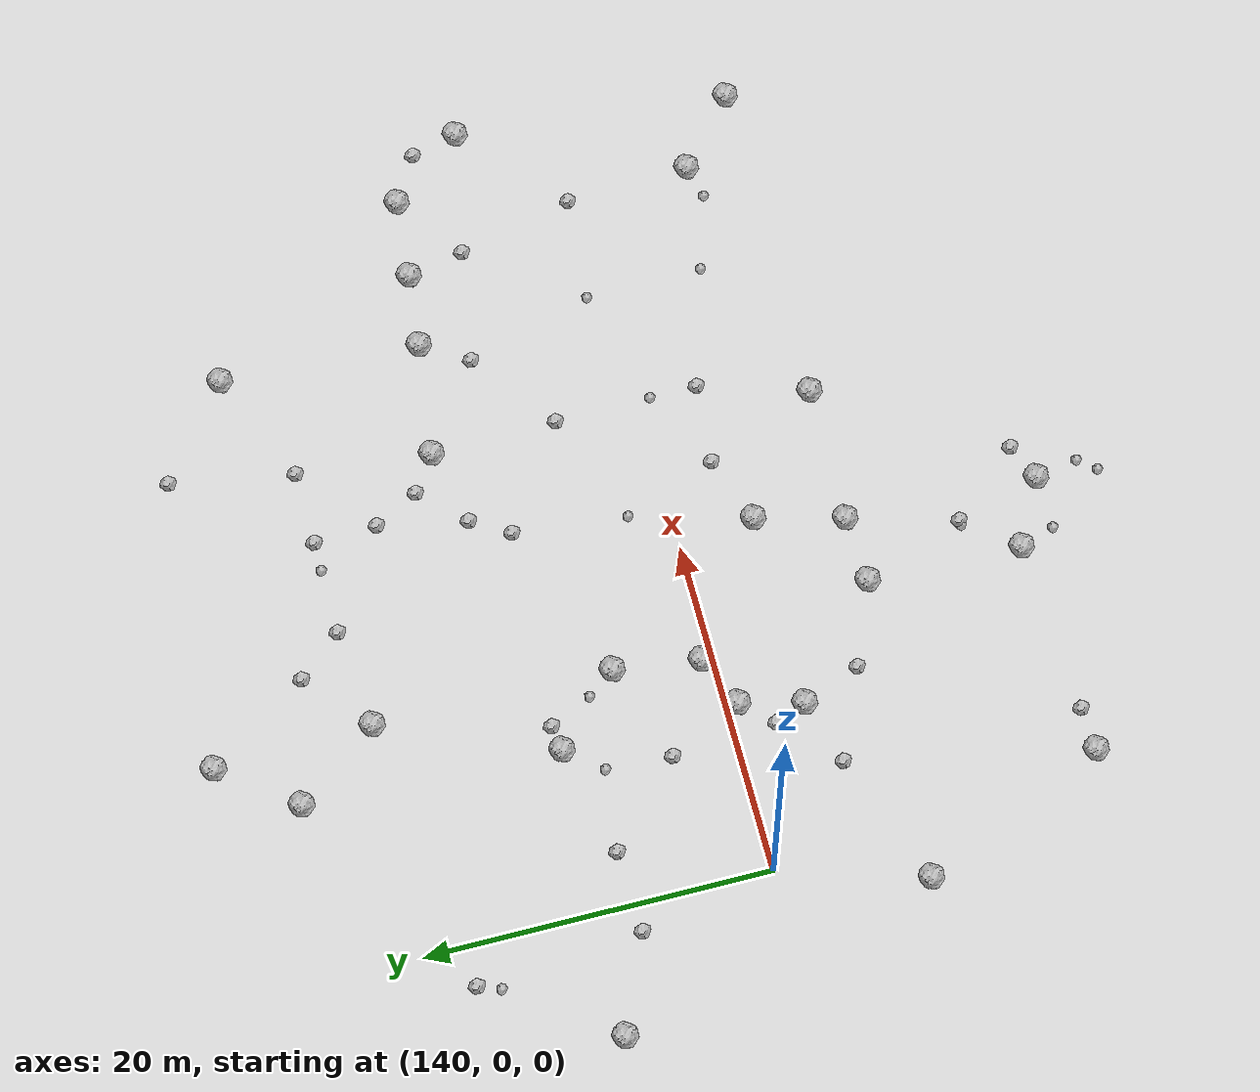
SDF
<sdf version="1.6">
 <world name="default">
  <include><uri>model://sun</uri></include>
  <model name="rock1_4_2">
   <include><uri>model://rock1</uri><pose>187.3562052997329 -10.031713053855075 0.5 0 0 0</pose></include>
  </model>
  <model name="rock1_4_3">
   <include><uri>model://rock1</uri><pose>167.53471687610028 -9.689033133781344 0.5 0 0 0</pose></include>
  </model>
  <model name="rock1_4_4">
   <include><uri>model://rock1</uri><pose>132.8632398717033 10.401752732410024 0.5 0 0 0</pose></include>
  </model>
  <model name="rock1_4_5">
   <include><uri>model://rock1</uri><pose>169.22915711056524 12.344344365527263 0.5 0 0 0</pose></include>
  </model>
  <model name="rock1_4_6">
   <include><uri>model://rock1</uri><pose>188.90943503776003 6.099504948376605 0.5 0 0 0</pose></include>
  </model>
  <model name="rock1_4_7">
   <include><uri>model://rock1</uri><pose>158.99555440398987 -20.764938915951014 0.5 0 0 0</pose></include>
  </model>
  <model name="rock1_4_8">
   <include><uri>model://rock1</uri><pose>153.7298757789309 5.68400421399825 0.5 0 0 0</pose></include>
  </model>
  <model name="rock1_4_9">
   <include><uri>model://rock1</uri><pose>150.3253667018962 24.404527935218205 0.5 0 0 0</pose></include>
  </model>
  <model name="rock1_4_10">
   <include><uri>model://rock1</uri><pose>153.04230189455168 0.6800077768900508 0.5 0 0 0</pose></include>
  </model>
  <model name="rock1_4_11">
   <include><uri>model://rock1</uri><pose>185.42045336101253 10.476278491743514 0.5 0 0 0</pose></include>
  </model>
  <model name="rock1_4_12">
   <include><uri>model://rock1</uri><pose>137.36385228714155 -8.243710205805709 0.5 0 0 0</pose></include>
  </model>
  <model name="rock1_4_13">
   <include><uri>model://rock1</uri><pose>160.65477648649943 -4.435346312410147 0.5 0 0 0</pose></include>
  </model>
  <model name="rock1_4_14">
   <include><uri>model://rock1</uri><pose>180.5970209082269 10.92113711817715 0.5 0 0 0</pose></include>
  </model>
  <model name="rock1_4_15">
   <include><uri>model://rock1</uri><pose>176.78112764811684 23.071093600243906 0.5 0 0 0</pose></include>
  </model>
  <model name="rock1_4_16">
   <include><uri>model://rock1</uri><pose>142.2530488659405 -19.237610400595294 0.5 0 0 0</pose></include>
  </model>
  <model name="rock1_4_17">
   <include><uri>model://rock1</uri><pose>153.63916900407992 28.668093941854735 0.5 0 0 0</pose></include>
  </model>
  <model name="rock1_4_18">
   <include><uri>model://rock1</uri><pose>153.95414889403764 19.509198637032583 0.5 0 0 0</pose></include>
  </model>
  <model name="rock1_4_19">
   <include><uri>model://rock1</uri><pose>183.326108568277 -6.567926118573798 0.5 0 0 0</pose></include>
  </model>
  <model name="rock1_4_20">
   <include><uri>model://rock1</uri><pose>149.7928274432018 9.610052019079255 0.5 0 0 0</pose></include>
  </model>
  <model name="rock1_4_21">
   <include><uri>model://rock1</uri><pose>159.31287381605057 -9.505326870847728 0.5 0 0 0</pose></include>
  </model>
  <model name="rock1_4_22">
   <include><uri>model://rock1</uri><pose>155.07545732602793 -18.723729131828296 0.5 0 0 0</pose></include>
  </model>
  <model name="rock1_4_23">
   <include><uri>model://rock1</uri><pose>149.0678951695129 -4.251080320805105 0.5 0 0 0</pose></include>
  </model>
  <model name="rock1_4_24">
   <include><uri>model://rock1</uri><pose>176.1079762337427 11.410362428326529 0.5 0 0 0</pose></include>
  </model>
  <model name="rock1_4_25">
   <include><uri>model://rock1</uri><pose>150.01000468629923 -0.6126558005912628 0.5 0 0 0</pose></include>
  </model>
  <model name="rock1_4_26">
   <include><uri>model://rock1</uri><pose>155.31650951550944 -9.702082306875113 0.5 0 0 0</pose></include>
  </model>
  <model name="rock2_4_0">
   <include><uri>model://rock2</uri><pose>181.2942506106994 7.566005558534883 0.3 0 0 0</pose></include>
  </model>
  <model name="rock2_4_1">
   <include><uri>model://rock2</uri><pose>151.3073870487399 9.811341411066913 0.3 0 0 0</pose></include>
  </model>
  <model name="rock2_4_2">
   <include><uri>model://rock2</uri><pose>157.6085922602802 22.717336202525317 0.3 0 0 0</pose></include>
  </model>
  <model name="rock2_4_3">
   <include><uri>model://rock2</uri><pose>165.54122964050265 20.12138933877359 0.3 0 0 0</pose></include>
  </model>
  <model name="rock2_4_4">
   <include><uri>model://rock2</uri><pose>145.16469727200894 -5.415692172487056 0.3 0 0 0</pose></include>
  </model>
  <model name="rock2_4_5">
   <include><uri>model://rock2</uri><pose>157.54985597063546 -15.777651598286441 0.3 0 0 0</pose></include>
  </model>
  <model name="rock2_4_6">
   <include><uri>model://rock2</uri><pose>163.27560676124023 9.08576398534894 0.3 0 0 0</pose></include>
  </model>
  <model name="rock2_4_7">
   <include><uri>model://rock2</uri><pose>137.65094506378722 17.524422282960366 0.3 0 0 0</pose></include>
  </model>
  <model name="rock2_4_8">
   <include><uri>model://rock2</uri><pose>167.08389152825941 13.818690913150839 0.3 0 0 0</pose></include>
  </model>
  <model name="rock2_4_9">
   <include><uri>model://rock2</uri><pose>164.62807709480717 11.293917533988079 0.3 0 0 0</pose></include>
  </model>
  <model name="rock2_4_10">
   <include><uri>model://rock2</uri><pose>147.86924105840274 3.710545255577294 0.3 0 0 0</pose></include>
  </model>
  <model name="rock2_4_11">
   <include><uri>model://rock2</uri><pose>164.67453179831324 -3.0608325800639022 0.3 0 0 0</pose></include>
  </model>
  <model name="rock2_4_12">
   <include><uri>model://rock2</uri><pose>143.20591922407834 8.137290233778117 0.3 0 0 0</pose></include>
  </model>
  <model name="rock2_4_13">
   <include><uri>model://rock2</uri><pose>161.17979282726333 -19.8883871650255 0.3 0 0 0</pose></include>
  </model>
  <model name="rock2_4_14">
   <include><uri>model://rock2</uri><pose>188.21272381267323 8.834775258812897 0.3 0 0 0</pose></include>
  </model>
  <model name="rock2_4_15">
   <include><uri>model://rock2</uri><pose>174.40851947469554 8.7295654560439 0.3 0 0 0</pose></include>
  </model>
  <model name="rock2_4_16">
   <include><uri>model://rock2</uri><pose>144.80673503070378 -19.164128263633174 0.3 0 0 0</pose></include>
  </model>
  <model name="rock2_4_17">
   <include><uri>model://rock2</uri><pose>169.40348013816134 4.954705963592893 0.3 0 0 0</pose></include>
  </model>
  <model name="rock2_4_18">
   <include><uri>model://rock2</uri><pose>182.96759771761094 0.7359755335784293 0.3 0 0 0</pose></include>
  </model>
  <model name="rock2_4_19">
   <include><uri>model://rock2</uri><pose>148.33534391415228 -2.400537138229904 0.3 0 0 0</pose></include>
  </model>
  <model name="rock2_4_20">
   <include><uri>model://rock2</uri><pose>165.68287099810098 16.443993708152455 0.3 0 0 0</pose></include>
  </model>
  <model name="rock2_4_21">
   <include><uri>model://rock2</uri><pose>150.41918463611148 -7.708579632782975 0.3 0 0 0</pose></include>
  </model>
  <model name="rock2_4_22">
   <include><uri>model://rock2</uri><pose>171.2436684505111 27.359945713069763 0.3 0 0 0</pose></include>
  </model>
  <model name="rock2_4_23">
   <include><uri>model://rock2</uri><pose>138.39759067000878 7.96728089702156 0.3 0 0 0</pose></include>
  </model>
  <model name="rock2_4_24">
   <include><uri>model://rock2</uri><pose>169.98889414237897 20.18749618611396 0.3 0 0 0</pose></include>
  </model>
  <model name="rock2_4_25">
   <include><uri>model://rock2</uri><pose>159.86756135700807 20.093713392903787 0.3 0 0 0</pose></include>
  </model>
  <model name="rock2_4_26">
   <include><uri>model://rock2</uri><pose>169.4939722825318 -3.471436011918886 0.3 0 0 0</pose></include>
  </model>
  <model name="rock3_4_0">
   <include><uri>model://rock3</uri><pose>155.7713880193642 -20.859169815212958 0.2 0 0 0</pose></include>
  </model>
  <model name="rock3_4_1">
   <include><uri>model://rock3</uri><pose>137.15138654549003 16.22036747722334 0.2 0 0 0</pose></include>
  </model>
  <model name="rock3_4_2">
   <include><uri>model://rock3</uri><pose>169.47485754766825 -0.7200360708399813 0.2 0 0 0</pose></include>
  </model>
  <model name="rock3_4_3">
   <include><uri>model://rock3</uri><pose>181.2939890841173 -7.123930572402372 0.2 0 0 0</pose></include>
  </model>
  <model name="rock3_4_4">
   <include><uri>model://rock3</uri><pose>152.49396908962314 7.2764420217223105 0.2 0 0 0</pose></include>
  </model>
  <model name="rock3_4_5">
   <include><uri>model://rock3</uri><pose>148.0684810471435 7.516189954087082 0.2 0 0 0</pose></include>
  </model>
  <model name="rock3_4_6">
   <include><uri>model://rock3</uri><pose>157.23395271408174 -15.8373168535895 0.2 0 0 0</pose></include>
  </model>
  <model name="rock3_4_7">
   <include><uri>model://rock3</uri><pose>163.78474975242065 20.090389165662323 0.2 0 0 0</pose></include>
  </model>
  <model name="rock3_4_8">
   <include><uri>model://rock3</uri><pose>159.45320127198215 -23.368347986935817 0.2 0 0 0</pose></include>
  </model>
  <model name="rock3_4_9">
   <include><uri>model://rock3</uri><pose>176.72162520647004 -5.702788497023398 0.2 0 0 0</pose></include>
  </model>
  <model name="rock3_4_10">
   <include><uri>model://rock3</uri><pose>158.59661436004768 -24.38528105905857 0.2 0 0 0</pose></include>
  </model>
  <model name="rock3_4_11">
   <include><uri>model://rock3</uri><pose>176.609337256072 1.200347738119408 0.2 0 0 0</pose></include>
  </model>
  <model name="rock3_4_12">
   <include><uri>model://rock3</uri><pose>162.5970495435013 2.3935328857459197 0.2 0 0 0</pose></include>
  </model>
 </world>
</sdf>
